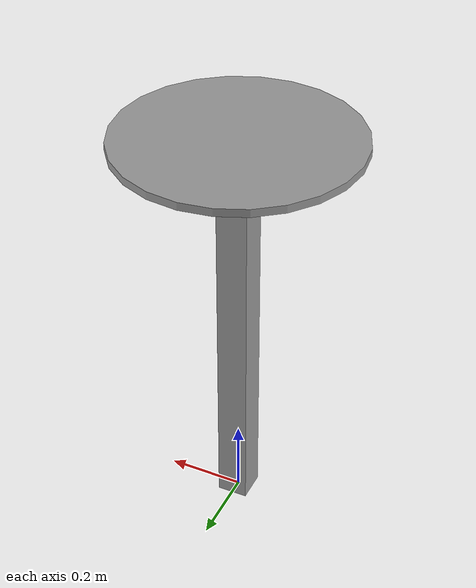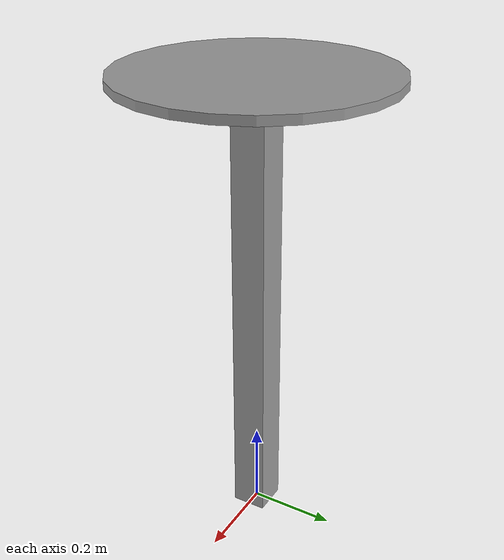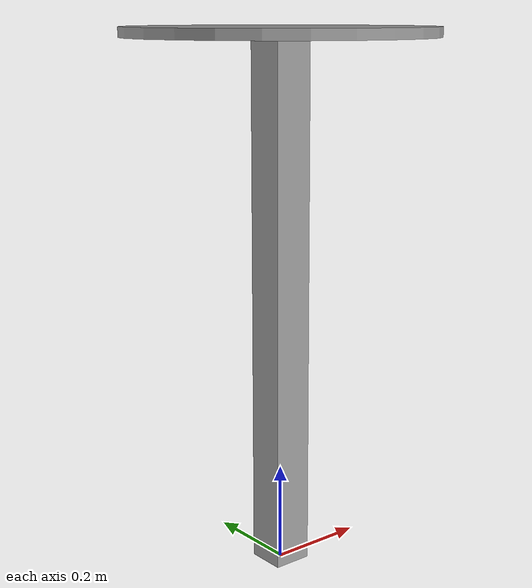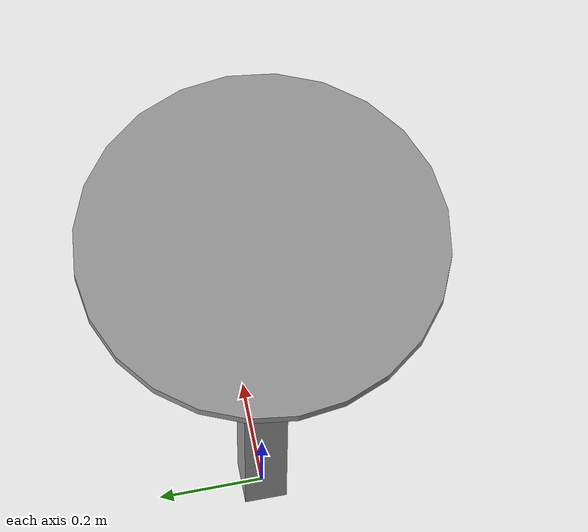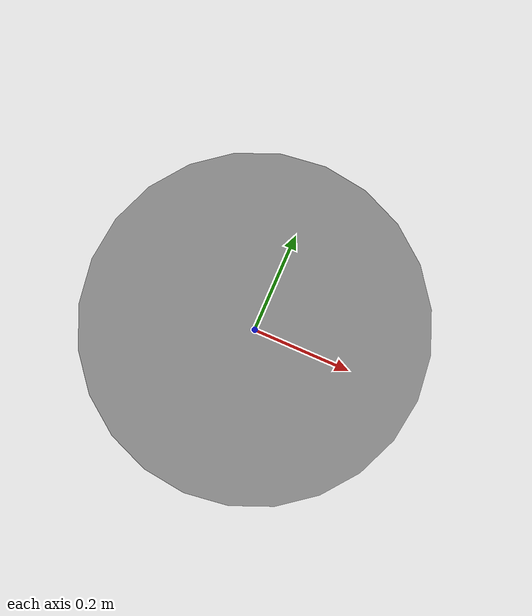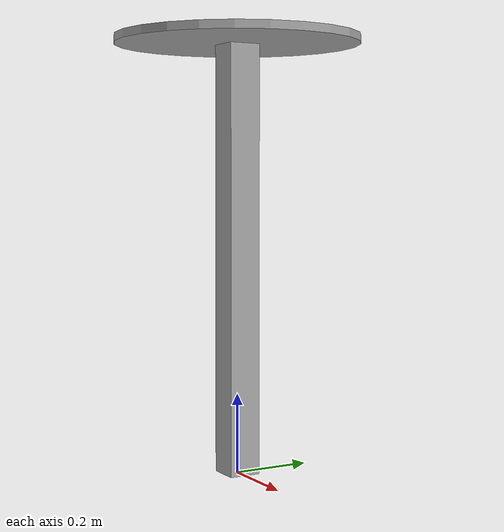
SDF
<?xml version="1.0"?>
<sdf version="1.6">
<model name="ur5_table">
<static>true</static>
<link name="top_plate">
<pose>0 0 1.08 0 0 0</pose>
<collision name="top_plate_collision">
<geometry> <cylinder>
<radius>0.3048</radius>
<length>0.02</length> </cylinder>
</geometry> <surface>
<contact> <collide_bitmask>0x01</collide_bitmask>
</contact> </surface> </collision>
<visual name="top_plate_visual"> <geometry>
<cylinder> <radius>0.3048</radius> <length>0.02</length>
</cylinder> </geometry> <material>
<script> <uri>file://media/materials/scripts/gazebo.material</uri> <name>Gazebo/Grey</name>
</script> </material>
</visual>
</link>
<link name="leg1">
<pose>0 0 0.535 0 0 0</pose> <collision name="leg1_collision">
<geometry> <box>
<size>0.08 0.08 1.07</size> </box>
</geometry>
</collision>
<visual name="leg1_visual">
<geometry> <box>
<size>0.08 0.08 1.07</size> </box>
</geometry> <material>
<script> <uri>file://media/materials/scripts/gazebo.material</uri> <name>Gazebo/Grey</name>
</script> </material>
</visual> </link>
</model> </sdf>
